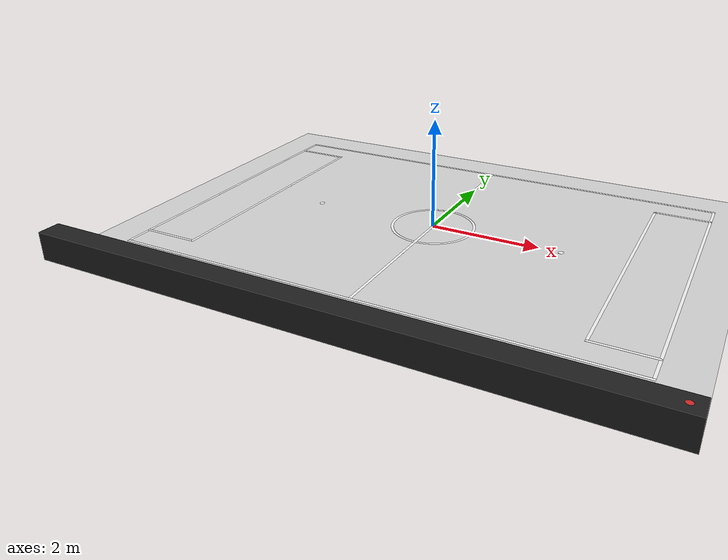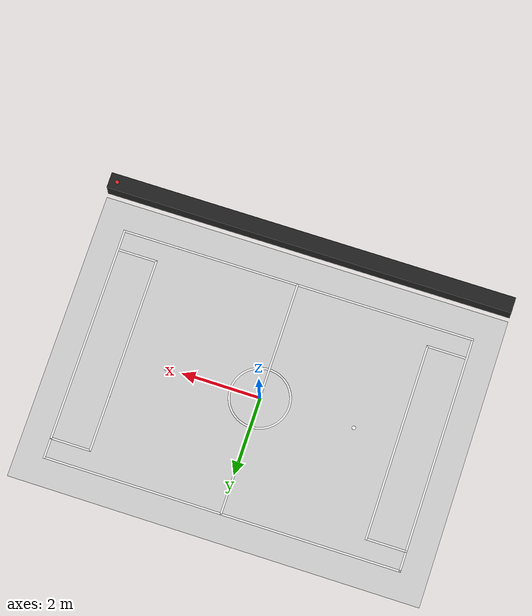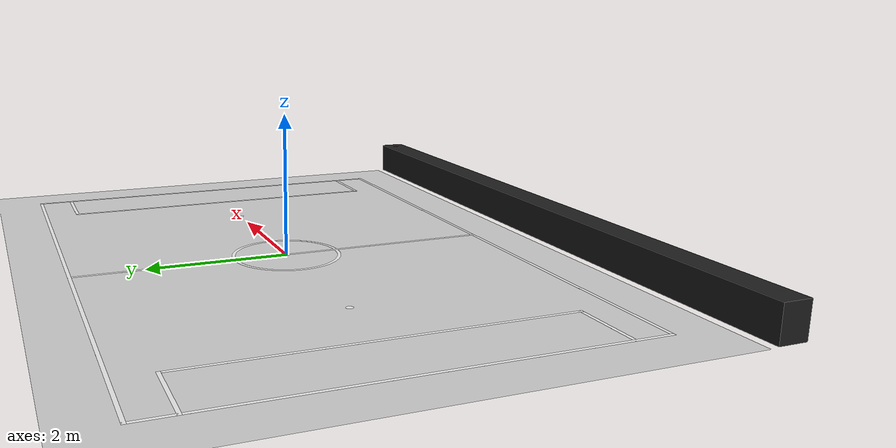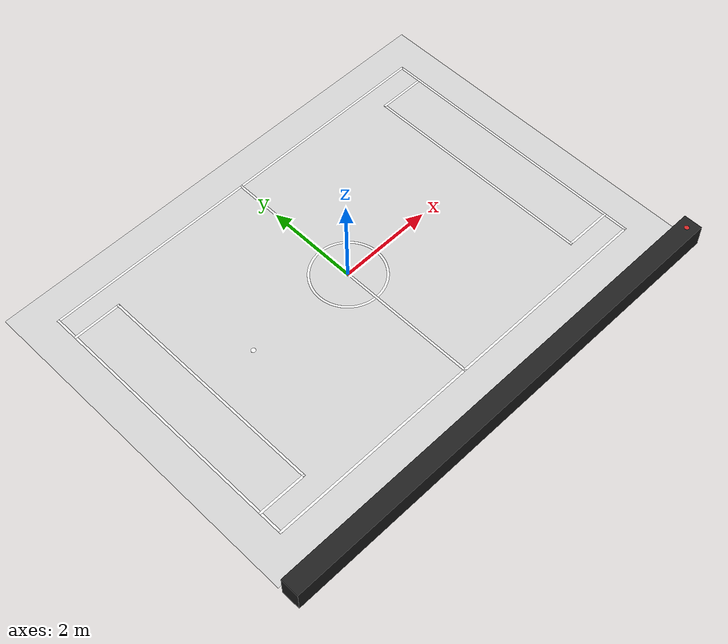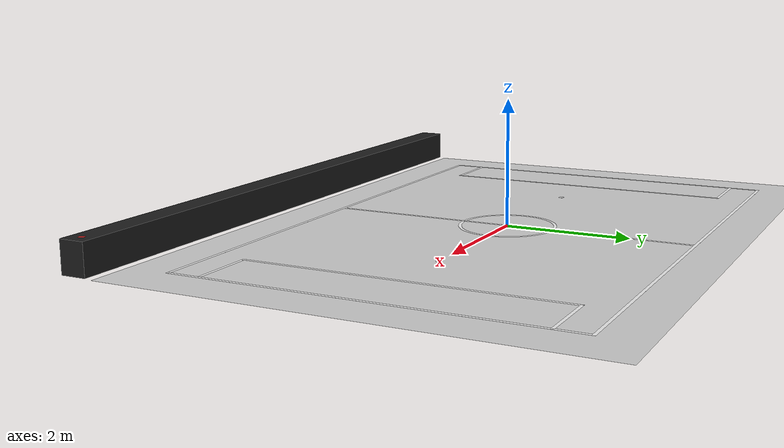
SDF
<?xml version="1.0" ?>
<sdf version="1.4">
  <model name="teensize_field">
    <static>true</static>

    <link name="field">
      <pose>0 0 0.005 0 0 0</pose>
      <visual name="carpet">
        <cast_shadows>false</cast_shadows>
        <geometry>
          <plane>
            <normal>0 0 1</normal>
            <size>10.40 7.40</size>
          </plane>
        </geometry>
        <material>
          <script>
            <uri>model://teensize_field/materials/scripts/</uri>
            <uri>model://teensize_field/materials/textures/</uri>
            <name>RoboCup/Carpet</name>
          </script>
        </material>
      </visual>

      <visual name="sideline_1">
        <pose>0 3 0.001 0 0 0</pose>
        <cast_shadows>false</cast_shadows>
        <geometry>
          <plane>
            <normal>0 0 1</normal>
            <size>9.05 0.05</size>
          </plane>
        </geometry>
        <material>
          <script>
            <uri>file://media/materials/scripts/gazebo.material</uri>
            <name>Gazebo/White</name>
          </script>
        </material>
      </visual>

      <visual name="sideline_2">
        <pose>0 -3 0.001 0 0 0</pose>
        <cast_shadows>false</cast_shadows>
        <geometry>
          <plane>
            <normal>0 0 1</normal>
            <size>9.05 0.05</size>
          </plane>
        </geometry>
        <material>
          <script>
            <uri>file://media/materials/scripts/gazebo.material</uri>
            <name>Gazebo/White</name>
          </script>
        </material>
      </visual>

      <visual name="endline_1">
        <pose>-4.5 0 0.001 0 0 0</pose>
        <cast_shadows>false</cast_shadows>
        <geometry>
          <plane>
            <normal>0 0 1</normal>
            <size>0.05 6.05</size>
          </plane>
        </geometry>
        <material>
          <script>
            <uri>file://media/materials/scripts/gazebo.material</uri>
            <name>Gazebo/White</name>
          </script>
        </material>
      </visual>

      <visual name="endline_2">
        <pose>4.5 0 0.001 0 0 0</pose>
        <cast_shadows>false</cast_shadows>
        <geometry>
          <plane>
            <normal>0 0 1</normal>
            <size>0.05 6.05</size>
          </plane>
        </geometry>
        <material>
          <script>
            <uri>file://media/materials/scripts/gazebo.material</uri>
            <name>Gazebo/White</name>
          </script>
        </material>
      </visual>

      <visual name="halfway_line">
        <pose>0 0 0.001 0 0 0</pose>
        <cast_shadows>false</cast_shadows>
        <geometry>
          <plane>
            <normal>0 0 1</normal>
            <size>0.05 6.05</size>
          </plane>
        </geometry>
        <material>
          <script>
            <uri>file://media/materials/scripts/gazebo.material</uri>
            <name>Gazebo/White</name>
          </script>
        </material>
      </visual>

      <visual name="area_1_line_a">
        <pose>-3.50 0 0.001 0 0 0</pose>
        <cast_shadows>false</cast_shadows>
        <geometry>
          <plane>
            <normal>0 0 1</normal>
            <size>0.05 5.05</size>
          </plane>
        </geometry>
        <material>
          <script>
            <uri>file://media/materials/scripts/gazebo.material</uri>
            <name>Gazebo/White</name>
          </script>
        </material>
      </visual>

      <visual name="area_2_line_a">
        <pose>-4.00 2.50 0.001 0 0 0</pose>
        <cast_shadows>false</cast_shadows>
        <geometry>
          <plane>
            <normal>0 0 1</normal>
            <size>1.05 0.05</size>
          </plane>
        </geometry>
        <material>
          <script>
            <uri>file://media/materials/scripts/gazebo.material</uri>
            <name>Gazebo/White</name>
          </script>
        </material>
      </visual>

      <visual name="area_3_line_a">
        <pose>-4.00 -2.50 0.001 0 0 0</pose>
        <cast_shadows>false</cast_shadows>
        <geometry>
          <plane>
            <normal>0 0 1</normal>
            <size>1.05 0.05</size>
          </plane>
        </geometry>
        <material>
          <script>
            <uri>file://media/materials/scripts/gazebo.material</uri>
            <name>Gazebo/White</name>
          </script>
        </material>
      </visual>

      <visual name="area_1_line_b">
        <pose>3.50 0 0.001 0 0 0</pose>
        <cast_shadows>false</cast_shadows>
        <geometry>
          <plane>
            <normal>0 0 1</normal>
            <size>0.05 5.05</size>
          </plane>
        </geometry>
        <material>
          <script>
            <uri>file://media/materials/scripts/gazebo.material</uri>
            <name>Gazebo/White</name>
          </script>
        </material>
      </visual>

      <visual name="area_2_line_b">
        <pose>4.00 2.50 0.001 0 0 0</pose>
        <cast_shadows>false</cast_shadows>
        <geometry>
          <plane>
            <normal>0 0 1</normal>
            <size>1.05 0.05</size>
          </plane>
        </geometry>
        <material>
          <script>
            <uri>file://media/materials/scripts/gazebo.material</uri>
            <name>Gazebo/White</name>
          </script>
        </material>
      </visual>

      <visual name="area_3_line_b">
        <pose>4.00 -2.50 0.001 0 0 0</pose>
        <cast_shadows>false</cast_shadows>
        <geometry>
          <plane>
            <normal>0 0 1</normal>
            <size>1.05 0.05</size>
          </plane>
        </geometry>
        <material>
          <script>
            <uri>file://media/materials/scripts/gazebo.material</uri>
            <name>Gazebo/White</name>
          </script>
        </material>
      </visual>

      <visual name="penalty_a">
        <pose>-2.40 0 0 0 0 0</pose>
        <cast_shadows>false</cast_shadows>
        <geometry>
          <cylinder>
            <radius>0.05</radius>
            <length>0.0005</length>
          </cylinder>
        </geometry>
        <material>
          <script>
            <uri>file://media/materials/scripts/gazebo.material</uri>
            <name>Gazebo/White</name>
          </script>
        </material>
      </visual>

      <visual name="penalty_b">
        <pose>2.40 0 0 0 0 0</pose>
        <cast_shadows>false</cast_shadows>
        <geometry>
          <cylinder>
            <radius>0.05</radius>
            <length>0.0005</length>
          </cylinder>
        </geometry>
        <material>
          <script>
            <uri>file://media/materials/scripts/gazebo.material</uri>
            <name>Gazebo/White</name>
          </script>
        </material>
      </visual>

      <visual name="center_point">
        <pose>0 0 0 0 0 0</pose>
        <cast_shadows>false</cast_shadows>
        <geometry>
          <cylinder>
            <radius>0.05</radius>
            <length>0.0005</length>
          </cylinder>
        </geometry>
        <material>
          <script>
            <uri>file://media/materials/scripts/gazebo.material</uri>
            <name>Gazebo/White</name>
          </script>
        </material>
      </visual>

      <visual name="center_circle">
        <pose>-0.775 -0.775 0.0005 0 0 0</pose>
        <cast_shadows>false</cast_shadows>
        <geometry>
          <mesh>
            <uri>model://teensize_field/mesh/annulus.stl</uri>
          </mesh>
        </geometry>
        <material>
          <script>
            <uri>file://media/materials/scripts/gazebo.material</uri>
            <name>Gazebo/White</name>
          </script>
        </material>
      </visual>

      <visual name="bench">
        <pose>0 -4.00 0.25 0 0 0</pose>
        <cast_shadows>false</cast_shadows>
        <geometry>
          <box>
            <size>10.4 0.4 0.5</size>
          </box>
        </geometry>
        <material>
          <script>
            <uri>file://media/materials/scripts/gazebo.material</uri>
            <name>Gazebo/FlatBlack</name>
          </script>
        </material>
      </visual>

      <visual name="positive goal">
        <pose>5.00 -4.00 0.5 0 0 0</pose>
        <cast_shadows>false</cast_shadows>
        <geometry>
          <cylinder>
            <radius>0.05</radius>
            <length>0.0005</length>
          </cylinder>
        </geometry>
        <material>
          <script>
            <uri>file://media/materials/scripts/gazebo.material</uri>
            <name>Gazebo/Red</name>
          </script>
        </material>
      </visual>

    </link>

  </model>
</sdf>
